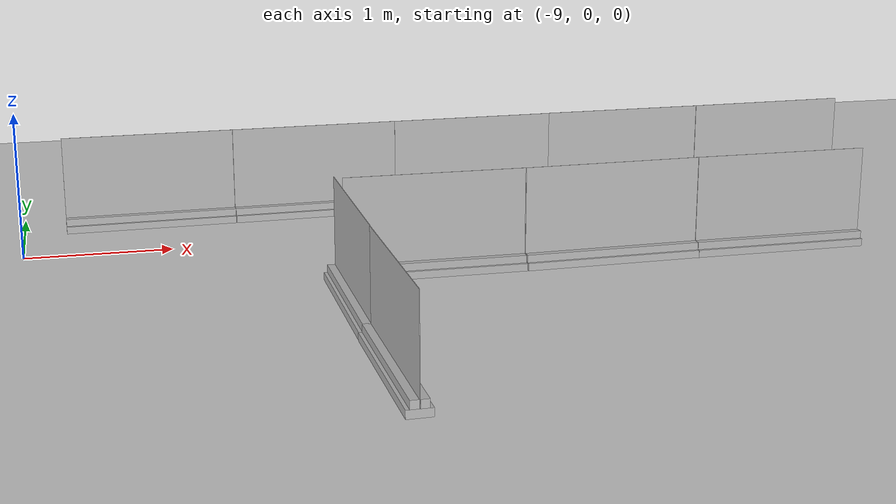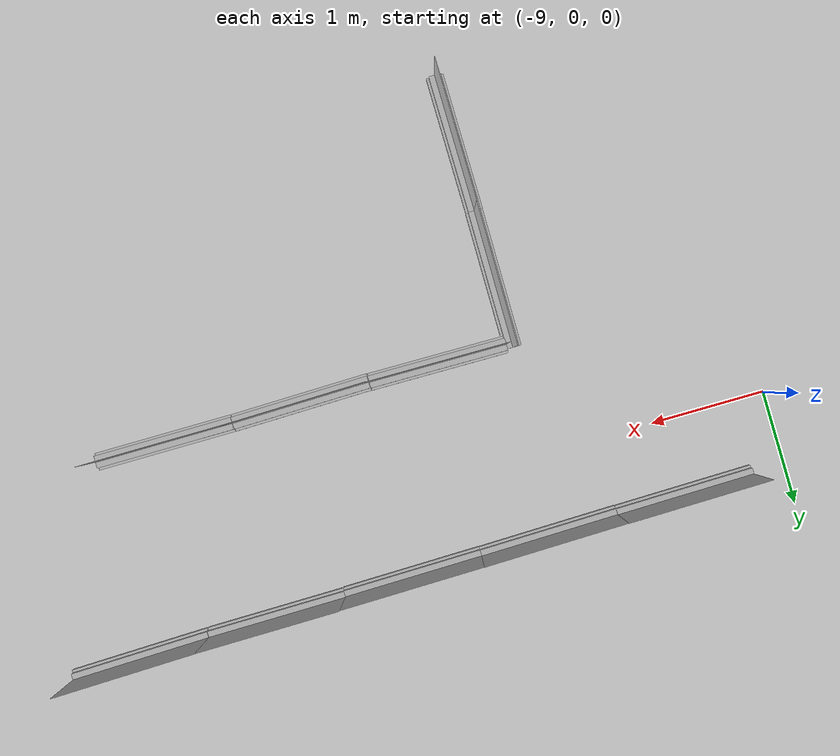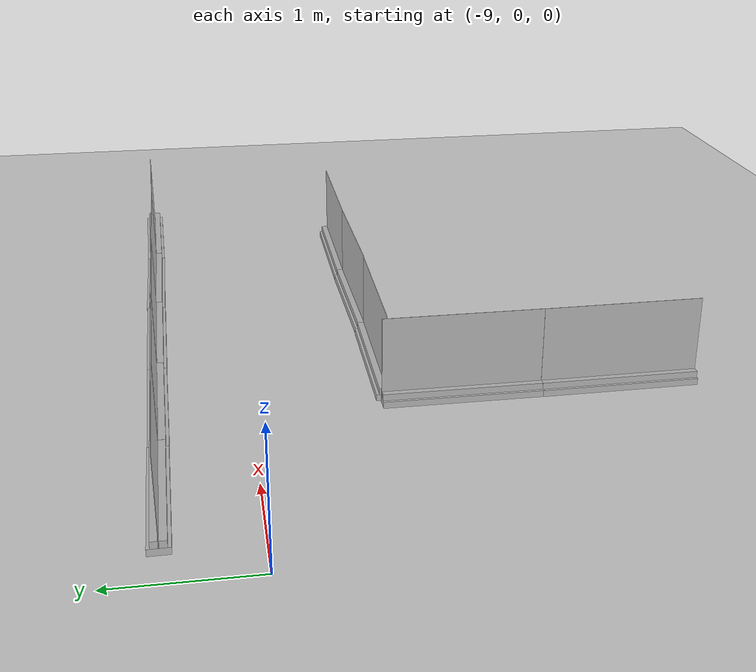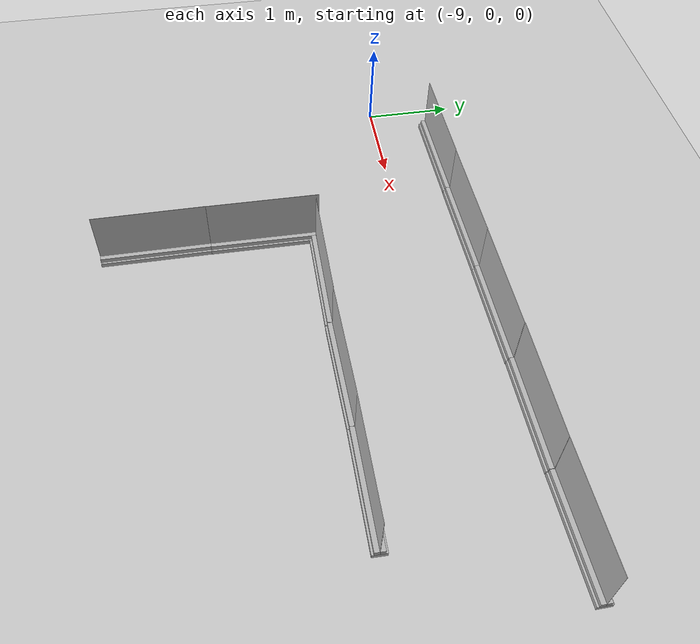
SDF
<sdf version="1.5">
 <world name="default">
  <model name="ground_plane">
   <pose>4 0 0 0 -0 0</pose>
   <static>1</static>
   <link name="link">
    <collision name="collision">
     <geometry><plane><normal>0 0 1</normal><size>100 100</size></plane></geometry>
     <surface><friction><ode><mu>100</mu><mu2>50</mu2></ode></friction></surface>
    </collision>
    <visual name="visual">
     <cast_shadows>0</cast_shadows>
     <geometry><plane><normal>0 0 1</normal><size>100 100</size></plane></geometry>
     <material>
      <script><uri>file://media/materials/scripts/gazebo.material</uri><name>Gazebo/Grey</name></script>
     </material>
    </visual>
    <velocity_decay><linear>0</linear><angular>0</angular></velocity_decay>
   </link>
  </model>
  <model name="fleming_wall no plugin_8">
   <static>1</static>
   <link name="wall">
    <pose>0 0 0.0254 0 -0 0</pose>
    <visual name="base_visual">
     <geometry><box><size>1.2192 0.1524 0.0508</size></box></geometry>
     <material>
      <script>
       <uri>model://fleming_wall/materials/scripts</uri>
       <uri>model://fleming_wall/materials/textures</uri>
       <name>FlemingWall/Image</name>
      </script>
     </material>
    </visual>
    <visual name="front_strut_visual">
     <pose>0 0.028575 0.0508 0 -0 0</pose>
     <geometry><box><size>1.2192 0.0508 0.0508</size></box></geometry>
     <material>
      <script>
       <uri>model://fleming_wall/materials/scripts</uri>
       <uri>model://fleming_wall/materials/textures</uri>
       <name>FlemingWall/Image</name>
      </script>
     </material>
    </visual>
    <visual name="back_strut_visual">
     <pose>0 -0.028575 0.0508 0 -0 0</pose>
     <geometry><box><size>1.2192 0.0508 0.0508</size></box></geometry>
     <material>
      <script>
       <uri>model://fleming_wall/materials/scripts</uri>
       <uri>model://fleming_wall/materials/textures</uri>
       <name>FlemingWall/Image</name>
      </script>
     </material>
    </visual>
    <visual name="panel_visual">
     <pose>0 0 0.3556 0 -0 0</pose>
     <geometry><box><size>1.2192 0.003175 0.6096</size></box></geometry>
     <material>
      <script>
       <uri>model://fleming_wall/materials/scripts</uri>
       <uri>model://fleming_wall/materials/textures</uri>
       <name>FlemingWall/Image</name>
      </script>
     </material>
    </visual>
   </link>
   <pose>-3.21849 0.729658 0 0 -0 0.024185</pose>
  </model>
  <model name="fleming_wall no plugin_9">
   <static>1</static>
   <link name="wall">
    <pose>0 0 0.0254 0 -0 0</pose>
    <visual name="base_visual">
     <geometry><box><size>1.2192 0.1524 0.0508</size></box></geometry>
     <material>
      <script>
       <uri>model://fleming_wall/materials/scripts</uri>
       <uri>model://fleming_wall/materials/textures</uri>
       <name>FlemingWall/Image</name>
      </script>
     </material>
    </visual>
    <visual name="front_strut_visual">
     <pose>0 0.028575 0.0508 0 -0 0</pose>
     <geometry><box><size>1.2192 0.0508 0.0508</size></box></geometry>
     <material>
      <script>
       <uri>model://fleming_wall/materials/scripts</uri>
       <uri>model://fleming_wall/materials/textures</uri>
       <name>FlemingWall/Image</name>
      </script>
     </material>
    </visual>
    <visual name="back_strut_visual">
     <pose>0 -0.028575 0.0508 0 -0 0</pose>
     <geometry><box><size>1.2192 0.0508 0.0508</size></box></geometry>
     <material>
      <script>
       <uri>model://fleming_wall/materials/scripts</uri>
       <uri>model://fleming_wall/materials/textures</uri>
       <name>FlemingWall/Image</name>
      </script>
     </material>
    </visual>
    <visual name="panel_visual">
     <pose>0 0 0.3556 0 -0 0</pose>
     <geometry><box><size>1.2192 0.003175 0.6096</size></box></geometry>
     <material>
      <script>
       <uri>model://fleming_wall/materials/scripts</uri>
       <uri>model://fleming_wall/materials/textures</uri>
       <name>FlemingWall/Image</name>
      </script>
     </material>
    </visual>
   </link>
   <pose>-4.44076 0.709416 0 0 -0 0.007598</pose>
  </model>
  <model name="fleming_wall no plugin_10">
   <static>1</static>
   <link name="wall">
    <pose>0 0 0.0254 0 -0 0</pose>
    <visual name="base_visual">
     <geometry><box><size>1.2192 0.1524 0.0508</size></box></geometry>
     <material>
      <script>
       <uri>model://fleming_wall/materials/scripts</uri>
       <uri>model://fleming_wall/materials/textures</uri>
       <name>FlemingWall/Image</name>
      </script>
     </material>
    </visual>
    <visual name="front_strut_visual">
     <pose>0 0.028575 0.0508 0 -0 0</pose>
     <geometry><box><size>1.2192 0.0508 0.0508</size></box></geometry>
     <material>
      <script>
       <uri>model://fleming_wall/materials/scripts</uri>
       <uri>model://fleming_wall/materials/textures</uri>
       <name>FlemingWall/Image</name>
      </script>
     </material>
    </visual>
    <visual name="back_strut_visual">
     <pose>0 -0.028575 0.0508 0 -0 0</pose>
     <geometry><box><size>1.2192 0.0508 0.0508</size></box></geometry>
     <material>
      <script>
       <uri>model://fleming_wall/materials/scripts</uri>
       <uri>model://fleming_wall/materials/textures</uri>
       <name>FlemingWall/Image</name>
      </script>
     </material>
    </visual>
    <visual name="panel_visual">
     <pose>0 0 0.3556 0 -0 0</pose>
     <geometry><box><size>1.2192 0.003175 0.6096</size></box></geometry>
     <material>
      <script>
       <uri>model://fleming_wall/materials/scripts</uri>
       <uri>model://fleming_wall/materials/textures</uri>
       <name>FlemingWall/Image</name>
      </script>
     </material>
    </visual>
   </link>
   <pose>-5.66038 0.691979 0 0 -0 0.013973</pose>
  </model>
  <model name="fleming_wall no plugin_11">
   <static>1</static>
   <link name="wall">
    <pose>0 0 0.0254 0 -0 0</pose>
    <visual name="base_visual">
     <geometry><box><size>1.2192 0.1524 0.0508</size></box></geometry>
     <material>
      <script>
       <uri>model://fleming_wall/materials/scripts</uri>
       <uri>model://fleming_wall/materials/textures</uri>
       <name>FlemingWall/Image</name>
      </script>
     </material>
    </visual>
    <visual name="front_strut_visual">
     <pose>0 0.028575 0.0508 0 -0 0</pose>
     <geometry><box><size>1.2192 0.0508 0.0508</size></box></geometry>
     <material>
      <script>
       <uri>model://fleming_wall/materials/scripts</uri>
       <uri>model://fleming_wall/materials/textures</uri>
       <name>FlemingWall/Image</name>
      </script>
     </material>
    </visual>
    <visual name="back_strut_visual">
     <pose>0 -0.028575 0.0508 0 -0 0</pose>
     <geometry><box><size>1.2192 0.0508 0.0508</size></box></geometry>
     <material>
      <script>
       <uri>model://fleming_wall/materials/scripts</uri>
       <uri>model://fleming_wall/materials/textures</uri>
       <name>FlemingWall/Image</name>
      </script>
     </material>
    </visual>
    <visual name="panel_visual">
     <pose>0 0 0.3556 0 -0 0</pose>
     <geometry><box><size>1.2192 0.003175 0.6096</size></box></geometry>
     <material>
      <script>
       <uri>model://fleming_wall/materials/scripts</uri>
       <uri>model://fleming_wall/materials/textures</uri>
       <name>FlemingWall/Image</name>
      </script>
     </material>
    </visual>
   </link>
   <pose>-6.87895 0.673771 0 0 -0 0.01833</pose>
  </model>
  <model name="fleming_wall no plugin_12">
   <static>1</static>
   <link name="wall">
    <pose>0 0 0.0254 0 -0 0</pose>
    <visual name="base_visual">
     <geometry><box><size>1.2192 0.1524 0.0508</size></box></geometry>
     <material>
      <script>
       <uri>model://fleming_wall/materials/scripts</uri>
       <uri>model://fleming_wall/materials/textures</uri>
       <name>FlemingWall/Image</name>
      </script>
     </material>
    </visual>
    <visual name="front_strut_visual">
     <pose>0 0.028575 0.0508 0 -0 0</pose>
     <geometry><box><size>1.2192 0.0508 0.0508</size></box></geometry>
     <material>
      <script>
       <uri>model://fleming_wall/materials/scripts</uri>
       <uri>model://fleming_wall/materials/textures</uri>
       <name>FlemingWall/Image</name>
      </script>
     </material>
    </visual>
    <visual name="back_strut_visual">
     <pose>0 -0.028575 0.0508 0 -0 0</pose>
     <geometry><box><size>1.2192 0.0508 0.0508</size></box></geometry>
     <material>
      <script>
       <uri>model://fleming_wall/materials/scripts</uri>
       <uri>model://fleming_wall/materials/textures</uri>
       <name>FlemingWall/Image</name>
      </script>
     </material>
    </visual>
    <visual name="panel_visual">
     <pose>0 0 0.3556 0 -0 0</pose>
     <geometry><box><size>1.2192 0.003175 0.6096</size></box></geometry>
     <material>
      <script>
       <uri>model://fleming_wall/materials/scripts</uri>
       <uri>model://fleming_wall/materials/textures</uri>
       <name>FlemingWall/Image</name>
      </script>
     </material>
    </visual>
   </link>
   <pose>-8.09943 0.65602 0 0 -0 0.014713</pose>
  </model>
  <model name="fleming_wall no plugin_13">
   <static>1</static>
   <link name="wall">
    <pose>0 0 0.0254 0 -0 0</pose>
    <visual name="base_visual">
     <geometry><box><size>1.2192 0.1524 0.0508</size></box></geometry>
     <material>
      <script>
       <uri>model://fleming_wall/materials/scripts</uri>
       <uri>model://fleming_wall/materials/textures</uri>
       <name>FlemingWall/Image</name>
      </script>
     </material>
    </visual>
    <visual name="front_strut_visual">
     <pose>0 0.028575 0.0508 0 -0 0</pose>
     <geometry><box><size>1.2192 0.0508 0.0508</size></box></geometry>
     <material>
      <script>
       <uri>model://fleming_wall/materials/scripts</uri>
       <uri>model://fleming_wall/materials/textures</uri>
       <name>FlemingWall/Image</name>
      </script>
     </material>
    </visual>
    <visual name="back_strut_visual">
     <pose>0 -0.028575 0.0508 0 -0 0</pose>
     <geometry><box><size>1.2192 0.0508 0.0508</size></box></geometry>
     <material>
      <script>
       <uri>model://fleming_wall/materials/scripts</uri>
       <uri>model://fleming_wall/materials/textures</uri>
       <name>FlemingWall/Image</name>
      </script>
     </material>
    </visual>
    <visual name="panel_visual">
     <pose>0 0 0.3556 0 -0 0</pose>
     <geometry><box><size>1.2192 0.003175 0.6096</size></box></geometry>
     <material>
      <script>
       <uri>model://fleming_wall/materials/scripts</uri>
       <uri>model://fleming_wall/materials/textures</uri>
       <name>FlemingWall/Image</name>
      </script>
     </material>
    </visual>
   </link>
   <pose>-3.91582 -1 0 0 -0 0</pose>
  </model>
  <model name="fleming_wall no plugin_14">
   <static>1</static>
   <link name="wall">
    <pose>0 0 0.0254 0 -0 0</pose>
    <visual name="base_visual">
     <geometry><box><size>1.2192 0.1524 0.0508</size></box></geometry>
     <material>
      <script>
       <uri>model://fleming_wall/materials/scripts</uri>
       <uri>model://fleming_wall/materials/textures</uri>
       <name>FlemingWall/Image</name>
      </script>
     </material>
    </visual>
    <visual name="front_strut_visual">
     <pose>0 0.028575 0.0508 0 -0 0</pose>
     <geometry><box><size>1.2192 0.0508 0.0508</size></box></geometry>
     <material>
      <script>
       <uri>model://fleming_wall/materials/scripts</uri>
       <uri>model://fleming_wall/materials/textures</uri>
       <name>FlemingWall/Image</name>
      </script>
     </material>
    </visual>
    <visual name="back_strut_visual">
     <pose>0 -0.028575 0.0508 0 -0 0</pose>
     <geometry><box><size>1.2192 0.0508 0.0508</size></box></geometry>
     <material>
      <script>
       <uri>model://fleming_wall/materials/scripts</uri>
       <uri>model://fleming_wall/materials/textures</uri>
       <name>FlemingWall/Image</name>
      </script>
     </material>
    </visual>
    <visual name="panel_visual">
     <pose>0 0 0.3556 0 -0 0</pose>
     <geometry><box><size>1.2192 0.003175 0.6096</size></box></geometry>
     <material>
      <script>
       <uri>model://fleming_wall/materials/scripts</uri>
       <uri>model://fleming_wall/materials/textures</uri>
       <name>FlemingWall/Image</name>
      </script>
     </material>
    </visual>
   </link>
   <pose>-5.13774 -1.00924 0 0 -0 0.016639</pose>
  </model>
  <model name="fleming_wall no plugin_15">
   <static>1</static>
   <link name="wall">
    <pose>0 0 0.0254 0 -0 0</pose>
    <visual name="base_visual">
     <geometry><box><size>1.2192 0.1524 0.0508</size></box></geometry>
     <material>
      <script>
       <uri>model://fleming_wall/materials/scripts</uri>
       <uri>model://fleming_wall/materials/textures</uri>
       <name>FlemingWall/Image</name>
      </script>
     </material>
    </visual>
    <visual name="front_strut_visual">
     <pose>0 0.028575 0.0508 0 -0 0</pose>
     <geometry><box><size>1.2192 0.0508 0.0508</size></box></geometry>
     <material>
      <script>
       <uri>model://fleming_wall/materials/scripts</uri>
       <uri>model://fleming_wall/materials/textures</uri>
       <name>FlemingWall/Image</name>
      </script>
     </material>
    </visual>
    <visual name="back_strut_visual">
     <pose>0 -0.028575 0.0508 0 -0 0</pose>
     <geometry><box><size>1.2192 0.0508 0.0508</size></box></geometry>
     <material>
      <script>
       <uri>model://fleming_wall/materials/scripts</uri>
       <uri>model://fleming_wall/materials/textures</uri>
       <name>FlemingWall/Image</name>
      </script>
     </material>
    </visual>
    <visual name="panel_visual">
     <pose>0 0 0.3556 0 -0 0</pose>
     <geometry><box><size>1.2192 0.003175 0.6096</size></box></geometry>
     <material>
      <script>
       <uri>model://fleming_wall/materials/scripts</uri>
       <uri>model://fleming_wall/materials/textures</uri>
       <name>FlemingWall/Image</name>
      </script>
     </material>
    </visual>
   </link>
   <pose>-6.36173 -1.01197 -0 0 0 -0.007739</pose>
  </model>
  <model name="fleming_wall no plugin_17">
   <static>1</static>
   <link name="wall">
    <pose>0 0 0.0254 0 -0 0</pose>
    <visual name="base_visual">
     <geometry><box><size>1.2192 0.1524 0.0508</size></box></geometry>
     <material>
      <script>
       <uri>model://fleming_wall/materials/scripts</uri>
       <uri>model://fleming_wall/materials/textures</uri>
       <name>FlemingWall/Image</name>
      </script>
     </material>
    </visual>
    <visual name="front_strut_visual">
     <pose>0 0.028575 0.0508 0 -0 0</pose>
     <geometry><box><size>1.2192 0.0508 0.0508</size></box></geometry>
     <material>
      <script>
       <uri>model://fleming_wall/materials/scripts</uri>
       <uri>model://fleming_wall/materials/textures</uri>
       <name>FlemingWall/Image</name>
      </script>
     </material>
    </visual>
    <visual name="back_strut_visual">
     <pose>0 -0.028575 0.0508 0 -0 0</pose>
     <geometry><box><size>1.2192 0.0508 0.0508</size></box></geometry>
     <material>
      <script>
       <uri>model://fleming_wall/materials/scripts</uri>
       <uri>model://fleming_wall/materials/textures</uri>
       <name>FlemingWall/Image</name>
      </script>
     </material>
    </visual>
    <visual name="panel_visual">
     <pose>0 0 0.3556 0 -0 0</pose>
     <geometry><box><size>1.2192 0.003175 0.6096</size></box></geometry>
     <material>
      <script>
       <uri>model://fleming_wall/materials/scripts</uri>
       <uri>model://fleming_wall/materials/textures</uri>
       <name>FlemingWall/Image</name>
      </script>
     </material>
    </visual>
   </link>
   <pose>-7.02095 -1.57436 0 0 0 -1.57228</pose>
  </model>
  <model name="fleming_wall no plugin_18">
   <static>1</static>
   <link name="wall">
    <pose>0 0 0.0254 0 -0 0</pose>
    <visual name="base_visual">
     <geometry><box><size>1.2192 0.1524 0.0508</size></box></geometry>
     <material>
      <script>
       <uri>model://fleming_wall/materials/scripts</uri>
       <uri>model://fleming_wall/materials/textures</uri>
       <name>FlemingWall/Image</name>
      </script>
     </material>
    </visual>
    <visual name="front_strut_visual">
     <pose>0 0.028575 0.0508 0 -0 0</pose>
     <geometry><box><size>1.2192 0.0508 0.0508</size></box></geometry>
     <material>
      <script>
       <uri>model://fleming_wall/materials/scripts</uri>
       <uri>model://fleming_wall/materials/textures</uri>
       <name>FlemingWall/Image</name>
      </script>
     </material>
    </visual>
    <visual name="back_strut_visual">
     <pose>0 -0.028575 0.0508 0 -0 0</pose>
     <geometry><box><size>1.2192 0.0508 0.0508</size></box></geometry>
     <material>
      <script>
       <uri>model://fleming_wall/materials/scripts</uri>
       <uri>model://fleming_wall/materials/textures</uri>
       <name>FlemingWall/Image</name>
      </script>
     </material>
    </visual>
    <visual name="panel_visual">
     <pose>0 0 0.3556 0 -0 0</pose>
     <geometry><box><size>1.2192 0.003175 0.6096</size></box></geometry>
     <material>
      <script>
       <uri>model://fleming_wall/materials/scripts</uri>
       <uri>model://fleming_wall/materials/textures</uri>
       <name>FlemingWall/Image</name>
      </script>
     </material>
    </visual>
   </link>
   <pose>-7.019 -2.78584 0 0 -0 1.57879</pose>
  </model>
 </world>
</sdf>
